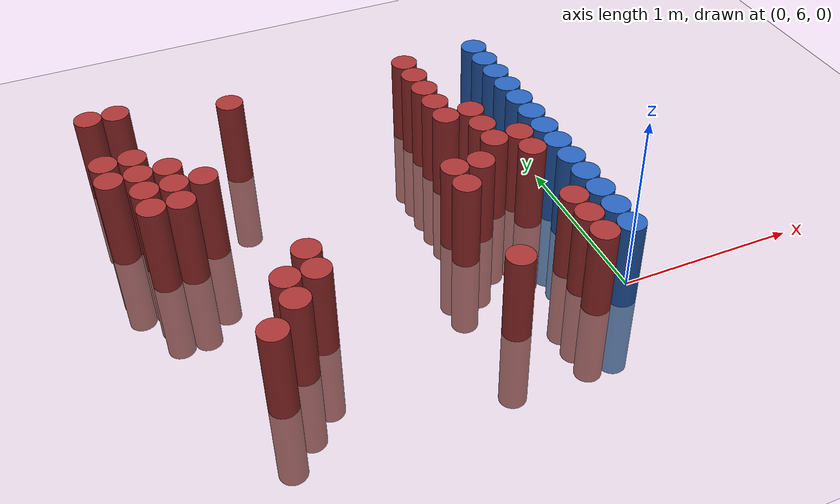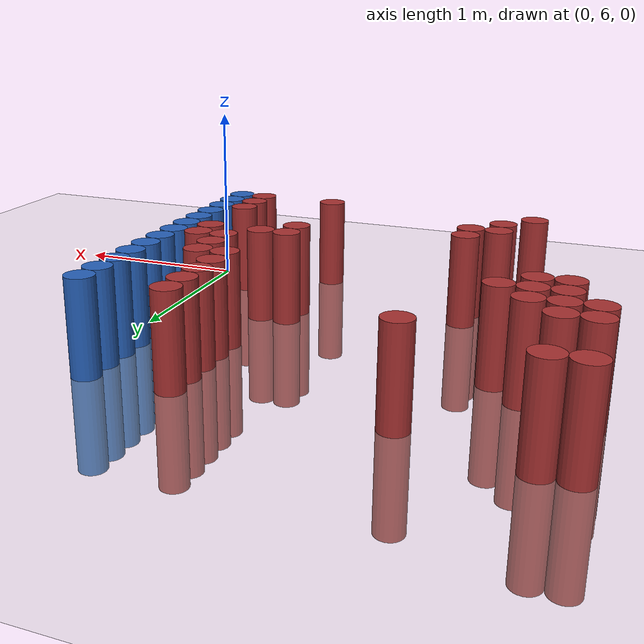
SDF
<sdf version="1.6">
 <world name="default">
  <model name="ground_plane">
   <static>1</static>
   <link name="link">
    <collision name="collision">
     <geometry><plane><normal>0 0 1</normal><size>100 100</size></plane></geometry>
     <surface><friction><ode><mu>100</mu><mu2>50</mu2></ode></friction></surface>
    </collision>
    <visual name="visual">
     <cast_shadows>0</cast_shadows>
     <geometry><plane><normal>0 0 1</normal><size>100 100</size></plane></geometry>
     <material>
      <script><uri>file://media/materials/scripts/gazebo.material</uri><name>Gazebo/Grey</name></script>
     </material>
    </visual>
   </link>
  </model>
  <model name="unit_cylinder_213">
   <static>1</static>
   <pose>-2.325000 7.275000 0.000000 0.000000 0.000000 0.000000</pose>
   <link name="link">
    <inertial>
     <mass>1</mass>
     <inertia><ixx>0.145833</ixx><ixy>0</ixy><ixz>0</ixz><iyy>0.145833</iyy><iyz>0</iyz><izz>0.125</izz></inertia>
    </inertial>
    <collision name="collision">
     <geometry><cylinder><radius>0.075000</radius><length>1</length></cylinder></geometry>
    </collision>
    <visual name="visual">
     <geometry><cylinder><radius>0.075000</radius><length>1</length></cylinder></geometry>
     <material>
      <ambient>0.648000 0.192000 0.192000 1</ambient>
      <diffuse>0.648000 0.192000 0.192000 1</diffuse>
     </material>
     <material>
      <script><name>Gazebo/Grey</name><uri>file://media/materials/scripts/gazebo.material</uri></script>
     </material>
    </visual>
   </link>
  </model>
  <model name="unit_cylinder_214">
   <static>1</static>
   <pose>-2.325000 7.425000 0.000000 0.000000 0.000000 0.000000</pose>
   <link name="link">
    <inertial>
     <mass>1</mass>
     <inertia><ixx>0.145833</ixx><ixy>0</ixy><ixz>0</ixz><iyy>0.145833</iyy><iyz>0</iyz><izz>0.125</izz></inertia>
    </inertial>
    <collision name="collision">
     <geometry><cylinder><radius>0.075000</radius><length>1</length></cylinder></geometry>
    </collision>
    <visual name="visual">
     <geometry><cylinder><radius>0.075000</radius><length>1</length></cylinder></geometry>
     <material>
      <ambient>0.648000 0.192000 0.192000 1</ambient>
      <diffuse>0.648000 0.192000 0.192000 1</diffuse>
     </material>
     <material>
      <script><name>Gazebo/Grey</name><uri>file://media/materials/scripts/gazebo.material</uri></script>
     </material>
    </visual>
   </link>
  </model>
  <model name="unit_cylinder_215">
   <static>1</static>
   <pose>-2.325000 7.875000 0.000000 0.000000 0.000000 0.000000</pose>
   <link name="link">
    <inertial>
     <mass>1</mass>
     <inertia><ixx>0.145833</ixx><ixy>0</ixy><ixz>0</ixz><iyy>0.145833</iyy><iyz>0</iyz><izz>0.125</izz></inertia>
    </inertial>
    <collision name="collision">
     <geometry><cylinder><radius>0.075000</radius><length>1</length></cylinder></geometry>
    </collision>
    <visual name="visual">
     <geometry><cylinder><radius>0.075000</radius><length>1</length></cylinder></geometry>
     <material>
      <ambient>0.648000 0.192000 0.192000 1</ambient>
      <diffuse>0.648000 0.192000 0.192000 1</diffuse>
     </material>
     <material>
      <script><name>Gazebo/Grey</name><uri>file://media/materials/scripts/gazebo.material</uri></script>
     </material>
    </visual>
   </link>
  </model>
  <model name="unit_cylinder_221">
   <static>1</static>
   <pose>-2.175000 6.975000 0.000000 0.000000 0.000000 0.000000</pose>
   <link name="link">
    <inertial>
     <mass>1</mass>
     <inertia><ixx>0.145833</ixx><ixy>0</ixy><ixz>0</ixz><iyy>0.145833</iyy><iyz>0</iyz><izz>0.125</izz></inertia>
    </inertial>
    <collision name="collision">
     <geometry><cylinder><radius>0.075000</radius><length>1</length></cylinder></geometry>
    </collision>
    <visual name="visual">
     <geometry><cylinder><radius>0.075000</radius><length>1</length></cylinder></geometry>
     <material>
      <ambient>0.648000 0.192000 0.192000 1</ambient>
      <diffuse>0.648000 0.192000 0.192000 1</diffuse>
     </material>
     <material>
      <script><name>Gazebo/Grey</name><uri>file://media/materials/scripts/gazebo.material</uri></script>
     </material>
    </visual>
   </link>
  </model>
  <model name="unit_cylinder_222">
   <static>1</static>
   <pose>-2.175000 7.125000 0.000000 0.000000 0.000000 0.000000</pose>
   <link name="link">
    <inertial>
     <mass>1</mass>
     <inertia><ixx>0.145833</ixx><ixy>0</ixy><ixz>0</ixz><iyy>0.145833</iyy><iyz>0</iyz><izz>0.125</izz></inertia>
    </inertial>
    <collision name="collision">
     <geometry><cylinder><radius>0.075000</radius><length>1</length></cylinder></geometry>
    </collision>
    <visual name="visual">
     <geometry><cylinder><radius>0.075000</radius><length>1</length></cylinder></geometry>
     <material>
      <ambient>0.648000 0.192000 0.192000 1</ambient>
      <diffuse>0.648000 0.192000 0.192000 1</diffuse>
     </material>
     <material>
      <script><name>Gazebo/Grey</name><uri>file://media/materials/scripts/gazebo.material</uri></script>
     </material>
    </visual>
   </link>
  </model>
  <model name="unit_cylinder_223">
   <static>1</static>
   <pose>-2.175000 7.275000 0.000000 0.000000 0.000000 0.000000</pose>
   <link name="link">
    <inertial>
     <mass>1</mass>
     <inertia><ixx>0.145833</ixx><ixy>0</ixy><ixz>0</ixz><iyy>0.145833</iyy><iyz>0</iyz><izz>0.125</izz></inertia>
    </inertial>
    <collision name="collision">
     <geometry><cylinder><radius>0.075000</radius><length>1</length></cylinder></geometry>
    </collision>
    <visual name="visual">
     <geometry><cylinder><radius>0.075000</radius><length>1</length></cylinder></geometry>
     <material>
      <ambient>0.648000 0.192000 0.192000 1</ambient>
      <diffuse>0.648000 0.192000 0.192000 1</diffuse>
     </material>
     <material>
      <script><name>Gazebo/Grey</name><uri>file://media/materials/scripts/gazebo.material</uri></script>
     </material>
    </visual>
   </link>
  </model>
  <model name="unit_cylinder_224">
   <static>1</static>
   <pose>-2.175000 7.425000 0.000000 0.000000 0.000000 0.000000</pose>
   <link name="link">
    <inertial>
     <mass>1</mass>
     <inertia><ixx>0.145833</ixx><ixy>0</ixy><ixz>0</ixz><iyy>0.145833</iyy><iyz>0</iyz><izz>0.125</izz></inertia>
    </inertial>
    <collision name="collision">
     <geometry><cylinder><radius>0.075000</radius><length>1</length></cylinder></geometry>
    </collision>
    <visual name="visual">
     <geometry><cylinder><radius>0.075000</radius><length>1</length></cylinder></geometry>
     <material>
      <ambient>0.648000 0.192000 0.192000 1</ambient>
      <diffuse>0.648000 0.192000 0.192000 1</diffuse>
     </material>
     <material>
      <script><name>Gazebo/Grey</name><uri>file://media/materials/scripts/gazebo.material</uri></script>
     </material>
    </visual>
   </link>
  </model>
  <model name="unit_cylinder_225">
   <static>1</static>
   <pose>-2.175000 7.875000 0.000000 0.000000 0.000000 0.000000</pose>
   <link name="link">
    <inertial>
     <mass>1</mass>
     <inertia><ixx>0.145833</ixx><ixy>0</ixy><ixz>0</ixz><iyy>0.145833</iyy><iyz>0</iyz><izz>0.125</izz></inertia>
    </inertial>
    <collision name="collision">
     <geometry><cylinder><radius>0.075000</radius><length>1</length></cylinder></geometry>
    </collision>
    <visual name="visual">
     <geometry><cylinder><radius>0.075000</radius><length>1</length></cylinder></geometry>
     <material>
      <ambient>0.648000 0.192000 0.192000 1</ambient>
      <diffuse>0.648000 0.192000 0.192000 1</diffuse>
     </material>
     <material>
      <script><name>Gazebo/Grey</name><uri>file://media/materials/scripts/gazebo.material</uri></script>
     </material>
    </visual>
   </link>
  </model>
  <model name="unit_cylinder_232">
   <static>1</static>
   <pose>-2.025000 6.975000 0.000000 0.000000 0.000000 0.000000</pose>
   <link name="link">
    <inertial>
     <mass>1</mass>
     <inertia><ixx>0.145833</ixx><ixy>0</ixy><ixz>0</ixz><iyy>0.145833</iyy><iyz>0</iyz><izz>0.125</izz></inertia>
    </inertial>
    <collision name="collision">
     <geometry><cylinder><radius>0.075000</radius><length>1</length></cylinder></geometry>
    </collision>
    <visual name="visual">
     <geometry><cylinder><radius>0.075000</radius><length>1</length></cylinder></geometry>
     <material>
      <ambient>0.648000 0.192000 0.192000 1</ambient>
      <diffuse>0.648000 0.192000 0.192000 1</diffuse>
     </material>
     <material>
      <script><name>Gazebo/Grey</name><uri>file://media/materials/scripts/gazebo.material</uri></script>
     </material>
    </visual>
   </link>
  </model>
  <model name="unit_cylinder_233">
   <static>1</static>
   <pose>-2.025000 7.125000 0.000000 0.000000 0.000000 0.000000</pose>
   <link name="link">
    <inertial>
     <mass>1</mass>
     <inertia><ixx>0.145833</ixx><ixy>0</ixy><ixz>0</ixz><iyy>0.145833</iyy><iyz>0</iyz><izz>0.125</izz></inertia>
    </inertial>
    <collision name="collision">
     <geometry><cylinder><radius>0.075000</radius><length>1</length></cylinder></geometry>
    </collision>
    <visual name="visual">
     <geometry><cylinder><radius>0.075000</radius><length>1</length></cylinder></geometry>
     <material>
      <ambient>0.648000 0.192000 0.192000 1</ambient>
      <diffuse>0.648000 0.192000 0.192000 1</diffuse>
     </material>
     <material>
      <script><name>Gazebo/Grey</name><uri>file://media/materials/scripts/gazebo.material</uri></script>
     </material>
    </visual>
   </link>
  </model>
  <model name="unit_cylinder_234">
   <static>1</static>
   <pose>-2.025000 7.275000 0.000000 0.000000 0.000000 0.000000</pose>
   <link name="link">
    <inertial>
     <mass>1</mass>
     <inertia><ixx>0.145833</ixx><ixy>0</ixy><ixz>0</ixz><iyy>0.145833</iyy><iyz>0</iyz><izz>0.125</izz></inertia>
    </inertial>
    <collision name="collision">
     <geometry><cylinder><radius>0.075000</radius><length>1</length></cylinder></geometry>
    </collision>
    <visual name="visual">
     <geometry><cylinder><radius>0.075000</radius><length>1</length></cylinder></geometry>
     <material>
      <ambient>0.648000 0.192000 0.192000 1</ambient>
      <diffuse>0.648000 0.192000 0.192000 1</diffuse>
     </material>
     <material>
      <script><name>Gazebo/Grey</name><uri>file://media/materials/scripts/gazebo.material</uri></script>
     </material>
    </visual>
   </link>
  </model>
  <model name="unit_cylinder_239">
   <static>1</static>
   <pose>-1.875000 5.925000 0.000000 0.000000 0.000000 0.000000</pose>
   <link name="link">
    <inertial>
     <mass>1</mass>
     <inertia><ixx>0.145833</ixx><ixy>0</ixy><ixz>0</ixz><iyy>0.145833</iyy><iyz>0</iyz><izz>0.125</izz></inertia>
    </inertial>
    <collision name="collision">
     <geometry><cylinder><radius>0.075000</radius><length>1</length></cylinder></geometry>
    </collision>
    <visual name="visual">
     <geometry><cylinder><radius>0.075000</radius><length>1</length></cylinder></geometry>
     <material>
      <ambient>0.648000 0.192000 0.192000 1</ambient>
      <diffuse>0.648000 0.192000 0.192000 1</diffuse>
     </material>
     <material>
      <script><name>Gazebo/Grey</name><uri>file://media/materials/scripts/gazebo.material</uri></script>
     </material>
    </visual>
   </link>
  </model>
  <model name="unit_cylinder_240">
   <static>1</static>
   <pose>-1.875000 7.125000 0.000000 0.000000 0.000000 0.000000</pose>
   <link name="link">
    <inertial>
     <mass>1</mass>
     <inertia><ixx>0.145833</ixx><ixy>0</ixy><ixz>0</ixz><iyy>0.145833</iyy><iyz>0</iyz><izz>0.125</izz></inertia>
    </inertial>
    <collision name="collision">
     <geometry><cylinder><radius>0.075000</radius><length>1</length></cylinder></geometry>
    </collision>
    <visual name="visual">
     <geometry><cylinder><radius>0.075000</radius><length>1</length></cylinder></geometry>
     <material>
      <ambient>0.648000 0.192000 0.192000 1</ambient>
      <diffuse>0.648000 0.192000 0.192000 1</diffuse>
     </material>
     <material>
      <script><name>Gazebo/Grey</name><uri>file://media/materials/scripts/gazebo.material</uri></script>
     </material>
    </visual>
   </link>
  </model>
  <model name="unit_cylinder_245">
   <static>1</static>
   <pose>-1.725000 6.075000 0.000000 0.000000 0.000000 0.000000</pose>
   <link name="link">
    <inertial>
     <mass>1</mass>
     <inertia><ixx>0.145833</ixx><ixy>0</ixy><ixz>0</ixz><iyy>0.145833</iyy><iyz>0</iyz><izz>0.125</izz></inertia>
    </inertial>
    <collision name="collision">
     <geometry><cylinder><radius>0.075000</radius><length>1</length></cylinder></geometry>
    </collision>
    <visual name="visual">
     <geometry><cylinder><radius>0.075000</radius><length>1</length></cylinder></geometry>
     <material>
      <ambient>0.648000 0.192000 0.192000 1</ambient>
      <diffuse>0.648000 0.192000 0.192000 1</diffuse>
     </material>
     <material>
      <script><name>Gazebo/Grey</name><uri>file://media/materials/scripts/gazebo.material</uri></script>
     </material>
    </visual>
   </link>
  </model>
  <model name="unit_cylinder_246">
   <static>1</static>
   <pose>-1.725000 6.225000 0.000000 0.000000 0.000000 0.000000</pose>
   <link name="link">
    <inertial>
     <mass>1</mass>
     <inertia><ixx>0.145833</ixx><ixy>0</ixy><ixz>0</ixz><iyy>0.145833</iyy><iyz>0</iyz><izz>0.125</izz></inertia>
    </inertial>
    <collision name="collision">
     <geometry><cylinder><radius>0.075000</radius><length>1</length></cylinder></geometry>
    </collision>
    <visual name="visual">
     <geometry><cylinder><radius>0.075000</radius><length>1</length></cylinder></geometry>
     <material>
      <ambient>0.648000 0.192000 0.192000 1</ambient>
      <diffuse>0.648000 0.192000 0.192000 1</diffuse>
     </material>
     <material>
      <script><name>Gazebo/Grey</name><uri>file://media/materials/scripts/gazebo.material</uri></script>
     </material>
    </visual>
   </link>
  </model>
  <model name="unit_cylinder_253">
   <static>1</static>
   <pose>-1.575000 6.225000 0.000000 0.000000 0.000000 0.000000</pose>
   <link name="link">
    <inertial>
     <mass>1</mass>
     <inertia><ixx>0.145833</ixx><ixy>0</ixy><ixz>0</ixz><iyy>0.145833</iyy><iyz>0</iyz><izz>0.125</izz></inertia>
    </inertial>
    <collision name="collision">
     <geometry><cylinder><radius>0.075000</radius><length>1</length></cylinder></geometry>
    </collision>
    <visual name="visual">
     <geometry><cylinder><radius>0.075000</radius><length>1</length></cylinder></geometry>
     <material>
      <ambient>0.648000 0.192000 0.192000 1</ambient>
      <diffuse>0.648000 0.192000 0.192000 1</diffuse>
     </material>
     <material>
      <script><name>Gazebo/Grey</name><uri>file://media/materials/scripts/gazebo.material</uri></script>
     </material>
    </visual>
   </link>
  </model>
  <model name="unit_cylinder_254">
   <static>1</static>
   <pose>-1.575000 6.375000 0.000000 0.000000 0.000000 0.000000</pose>
   <link name="link">
    <inertial>
     <mass>1</mass>
     <inertia><ixx>0.145833</ixx><ixy>0</ixy><ixz>0</ixz><iyy>0.145833</iyy><iyz>0</iyz><izz>0.125</izz></inertia>
    </inertial>
    <collision name="collision">
     <geometry><cylinder><radius>0.075000</radius><length>1</length></cylinder></geometry>
    </collision>
    <visual name="visual">
     <geometry><cylinder><radius>0.075000</radius><length>1</length></cylinder></geometry>
     <material>
      <ambient>0.648000 0.192000 0.192000 1</ambient>
      <diffuse>0.648000 0.192000 0.192000 1</diffuse>
     </material>
     <material>
      <script><name>Gazebo/Grey</name><uri>file://media/materials/scripts/gazebo.material</uri></script>
     </material>
    </visual>
   </link>
  </model>
  <model name="unit_cylinder_255">
   <static>1</static>
   <pose>-1.575000 7.725000 0.000000 0.000000 0.000000 0.000000</pose>
   <link name="link">
    <inertial>
     <mass>1</mass>
     <inertia><ixx>0.145833</ixx><ixy>0</ixy><ixz>0</ixz><iyy>0.145833</iyy><iyz>0</iyz><izz>0.125</izz></inertia>
    </inertial>
    <collision name="collision">
     <geometry><cylinder><radius>0.075000</radius><length>1</length></cylinder></geometry>
    </collision>
    <visual name="visual">
     <geometry><cylinder><radius>0.075000</radius><length>1</length></cylinder></geometry>
     <material>
      <ambient>0.648000 0.192000 0.192000 1</ambient>
      <diffuse>0.648000 0.192000 0.192000 1</diffuse>
     </material>
     <material>
      <script><name>Gazebo/Grey</name><uri>file://media/materials/scripts/gazebo.material</uri></script>
     </material>
    </visual>
   </link>
  </model>
  <model name="unit_cylinder_262">
   <static>1</static>
   <pose>-0.675000 5.925000 0.000000 0.000000 0.000000 0.000000</pose>
   <link name="link">
    <inertial>
     <mass>1</mass>
     <inertia><ixx>0.145833</ixx><ixy>0</ixy><ixz>0</ixz><iyy>0.145833</iyy><iyz>0</iyz><izz>0.125</izz></inertia>
    </inertial>
    <collision name="collision">
     <geometry><cylinder><radius>0.075000</radius><length>1</length></cylinder></geometry>
    </collision>
    <visual name="visual">
     <geometry><cylinder><radius>0.075000</radius><length>1</length></cylinder></geometry>
     <material>
      <ambient>0.648000 0.192000 0.192000 1</ambient>
      <diffuse>0.648000 0.192000 0.192000 1</diffuse>
     </material>
     <material>
      <script><name>Gazebo/Grey</name><uri>file://media/materials/scripts/gazebo.material</uri></script>
     </material>
    </visual>
   </link>
  </model>
  <model name="unit_cylinder_263">
   <static>1</static>
   <pose>-0.675000 6.525000 0.000000 0.000000 0.000000 0.000000</pose>
   <link name="link">
    <inertial>
     <mass>1</mass>
     <inertia><ixx>0.145833</ixx><ixy>0</ixy><ixz>0</ixz><iyy>0.145833</iyy><iyz>0</iyz><izz>0.125</izz></inertia>
    </inertial>
    <collision name="collision">
     <geometry><cylinder><radius>0.075000</radius><length>1</length></cylinder></geometry>
    </collision>
    <visual name="visual">
     <geometry><cylinder><radius>0.075000</radius><length>1</length></cylinder></geometry>
     <material>
      <ambient>0.648000 0.192000 0.192000 1</ambient>
      <diffuse>0.648000 0.192000 0.192000 1</diffuse>
     </material>
     <material>
      <script><name>Gazebo/Grey</name><uri>file://media/materials/scripts/gazebo.material</uri></script>
     </material>
    </visual>
   </link>
  </model>
  <model name="unit_cylinder_264">
   <static>1</static>
   <pose>-0.675000 6.675000 0.000000 0.000000 0.000000 0.000000</pose>
   <link name="link">
    <inertial>
     <mass>1</mass>
     <inertia><ixx>0.145833</ixx><ixy>0</ixy><ixz>0</ixz><iyy>0.145833</iyy><iyz>0</iyz><izz>0.125</izz></inertia>
    </inertial>
    <collision name="collision">
     <geometry><cylinder><radius>0.075000</radius><length>1</length></cylinder></geometry>
    </collision>
    <visual name="visual">
     <geometry><cylinder><radius>0.075000</radius><length>1</length></cylinder></geometry>
     <material>
      <ambient>0.648000 0.192000 0.192000 1</ambient>
      <diffuse>0.648000 0.192000 0.192000 1</diffuse>
     </material>
     <material>
      <script><name>Gazebo/Grey</name><uri>file://media/materials/scripts/gazebo.material</uri></script>
     </material>
    </visual>
   </link>
  </model>
  <model name="unit_cylinder_266">
   <static>1</static>
   <pose>-0.525000 6.675000 0.000000 0.000000 0.000000 0.000000</pose>
   <link name="link">
    <inertial>
     <mass>1</mass>
     <inertia><ixx>0.145833</ixx><ixy>0</ixy><ixz>0</ixz><iyy>0.145833</iyy><iyz>0</iyz><izz>0.125</izz></inertia>
    </inertial>
    <collision name="collision">
     <geometry><cylinder><radius>0.075000</radius><length>1</length></cylinder></geometry>
    </collision>
    <visual name="visual">
     <geometry><cylinder><radius>0.075000</radius><length>1</length></cylinder></geometry>
     <material>
      <ambient>0.648000 0.192000 0.192000 1</ambient>
      <diffuse>0.648000 0.192000 0.192000 1</diffuse>
     </material>
     <material>
      <script><name>Gazebo/Grey</name><uri>file://media/materials/scripts/gazebo.material</uri></script>
     </material>
    </visual>
   </link>
  </model>
  <model name="unit_cylinder_267">
   <static>1</static>
   <pose>-0.525000 7.125000 0.000000 0.000000 0.000000 0.000000</pose>
   <link name="link">
    <inertial>
     <mass>1</mass>
     <inertia><ixx>0.145833</ixx><ixy>0</ixy><ixz>0</ixz><iyy>0.145833</iyy><iyz>0</iyz><izz>0.125</izz></inertia>
    </inertial>
    <collision name="collision">
     <geometry><cylinder><radius>0.075000</radius><length>1</length></cylinder></geometry>
    </collision>
    <visual name="visual">
     <geometry><cylinder><radius>0.075000</radius><length>1</length></cylinder></geometry>
     <material>
      <ambient>0.648000 0.192000 0.192000 1</ambient>
      <diffuse>0.648000 0.192000 0.192000 1</diffuse>
     </material>
     <material>
      <script><name>Gazebo/Grey</name><uri>file://media/materials/scripts/gazebo.material</uri></script>
     </material>
    </visual>
   </link>
  </model>
  <model name="unit_cylinder_268">
   <static>1</static>
   <pose>-0.525000 7.275000 0.000000 0.000000 0.000000 0.000000</pose>
   <link name="link">
    <inertial>
     <mass>1</mass>
     <inertia><ixx>0.145833</ixx><ixy>0</ixy><ixz>0</ixz><iyy>0.145833</iyy><iyz>0</iyz><izz>0.125</izz></inertia>
    </inertial>
    <collision name="collision">
     <geometry><cylinder><radius>0.075000</radius><length>1</length></cylinder></geometry>
    </collision>
    <visual name="visual">
     <geometry><cylinder><radius>0.075000</radius><length>1</length></cylinder></geometry>
     <material>
      <ambient>0.648000 0.192000 0.192000 1</ambient>
      <diffuse>0.648000 0.192000 0.192000 1</diffuse>
     </material>
     <material>
      <script><name>Gazebo/Grey</name><uri>file://media/materials/scripts/gazebo.material</uri></script>
     </material>
    </visual>
   </link>
  </model>
  <model name="unit_cylinder_269">
   <static>1</static>
   <pose>-0.525000 7.425000 0.000000 0.000000 0.000000 0.000000</pose>
   <link name="link">
    <inertial>
     <mass>1</mass>
     <inertia><ixx>0.145833</ixx><ixy>0</ixy><ixz>0</ixz><iyy>0.145833</iyy><iyz>0</iyz><izz>0.125</izz></inertia>
    </inertial>
    <collision name="collision">
     <geometry><cylinder><radius>0.075000</radius><length>1</length></cylinder></geometry>
    </collision>
    <visual name="visual">
     <geometry><cylinder><radius>0.075000</radius><length>1</length></cylinder></geometry>
     <material>
      <ambient>0.648000 0.192000 0.192000 1</ambient>
      <diffuse>0.648000 0.192000 0.192000 1</diffuse>
     </material>
     <material>
      <script><name>Gazebo/Grey</name><uri>file://media/materials/scripts/gazebo.material</uri></script>
     </material>
    </visual>
   </link>
  </model>
  <model name="unit_cylinder_270">
   <static>1</static>
   <pose>-0.525000 7.575000 0.000000 0.000000 0.000000 0.000000</pose>
   <link name="link">
    <inertial>
     <mass>1</mass>
     <inertia><ixx>0.145833</ixx><ixy>0</ixy><ixz>0</ixz><iyy>0.145833</iyy><iyz>0</iyz><izz>0.125</izz></inertia>
    </inertial>
    <collision name="collision">
     <geometry><cylinder><radius>0.075000</radius><length>1</length></cylinder></geometry>
    </collision>
    <visual name="visual">
     <geometry><cylinder><radius>0.075000</radius><length>1</length></cylinder></geometry>
     <material>
      <ambient>0.648000 0.192000 0.192000 1</ambient>
      <diffuse>0.648000 0.192000 0.192000 1</diffuse>
     </material>
     <material>
      <script><name>Gazebo/Grey</name><uri>file://media/materials/scripts/gazebo.material</uri></script>
     </material>
    </visual>
   </link>
  </model>
  <model name="unit_cylinder_271">
   <static>1</static>
   <pose>-0.525000 7.725000 0.000000 0.000000 0.000000 0.000000</pose>
   <link name="link">
    <inertial>
     <mass>1</mass>
     <inertia><ixx>0.145833</ixx><ixy>0</ixy><ixz>0</ixz><iyy>0.145833</iyy><iyz>0</iyz><izz>0.125</izz></inertia>
    </inertial>
    <collision name="collision">
     <geometry><cylinder><radius>0.075000</radius><length>1</length></cylinder></geometry>
    </collision>
    <visual name="visual">
     <geometry><cylinder><radius>0.075000</radius><length>1</length></cylinder></geometry>
     <material>
      <ambient>0.648000 0.192000 0.192000 1</ambient>
      <diffuse>0.648000 0.192000 0.192000 1</diffuse>
     </material>
     <material>
      <script><name>Gazebo/Grey</name><uri>file://media/materials/scripts/gazebo.material</uri></script>
     </material>
    </visual>
   </link>
  </model>
  <model name="unit_cylinder_276">
   <static>1</static>
   <pose>-0.375000 6.825000 0.000000 0.000000 0.000000 0.000000</pose>
   <link name="link">
    <inertial>
     <mass>1</mass>
     <inertia><ixx>0.145833</ixx><ixy>0</ixy><ixz>0</ixz><iyy>0.145833</iyy><iyz>0</iyz><izz>0.125</izz></inertia>
    </inertial>
    <collision name="collision">
     <geometry><cylinder><radius>0.075000</radius><length>1</length></cylinder></geometry>
    </collision>
    <visual name="visual">
     <geometry><cylinder><radius>0.075000</radius><length>1</length></cylinder></geometry>
     <material>
      <ambient>0.648000 0.192000 0.192000 1</ambient>
      <diffuse>0.648000 0.192000 0.192000 1</diffuse>
     </material>
     <material>
      <script><name>Gazebo/Grey</name><uri>file://media/materials/scripts/gazebo.material</uri></script>
     </material>
    </visual>
   </link>
  </model>
  <model name="unit_cylinder_277">
   <static>1</static>
   <pose>-0.375000 6.975000 0.000000 0.000000 0.000000 0.000000</pose>
   <link name="link">
    <inertial>
     <mass>1</mass>
     <inertia><ixx>0.145833</ixx><ixy>0</ixy><ixz>0</ixz><iyy>0.145833</iyy><iyz>0</iyz><izz>0.125</izz></inertia>
    </inertial>
    <collision name="collision">
     <geometry><cylinder><radius>0.075000</radius><length>1</length></cylinder></geometry>
    </collision>
    <visual name="visual">
     <geometry><cylinder><radius>0.075000</radius><length>1</length></cylinder></geometry>
     <material>
      <ambient>0.648000 0.192000 0.192000 1</ambient>
      <diffuse>0.648000 0.192000 0.192000 1</diffuse>
     </material>
     <material>
      <script><name>Gazebo/Grey</name><uri>file://media/materials/scripts/gazebo.material</uri></script>
     </material>
    </visual>
   </link>
  </model>
  <model name="unit_cylinder_278">
   <static>1</static>
   <pose>-0.375000 7.125000 0.000000 0.000000 0.000000 0.000000</pose>
   <link name="link">
    <inertial>
     <mass>1</mass>
     <inertia><ixx>0.145833</ixx><ixy>0</ixy><ixz>0</ixz><iyy>0.145833</iyy><iyz>0</iyz><izz>0.125</izz></inertia>
    </inertial>
    <collision name="collision">
     <geometry><cylinder><radius>0.075000</radius><length>1</length></cylinder></geometry>
    </collision>
    <visual name="visual">
     <geometry><cylinder><radius>0.075000</radius><length>1</length></cylinder></geometry>
     <material>
      <ambient>0.648000 0.192000 0.192000 1</ambient>
      <diffuse>0.648000 0.192000 0.192000 1</diffuse>
     </material>
     <material>
      <script><name>Gazebo/Grey</name><uri>file://media/materials/scripts/gazebo.material</uri></script>
     </material>
    </visual>
   </link>
  </model>
  <model name="unit_cylinder_293">
   <static>1</static>
   <pose>-0.225000 5.925000 0.000000 0.000000 0.000000 0.000000</pose>
   <link name="link">
    <inertial>
     <mass>1</mass>
     <inertia><ixx>0.145833</ixx><ixy>0</ixy><ixz>0</ixz><iyy>0.145833</iyy><iyz>0</iyz><izz>0.125</izz></inertia>
    </inertial>
    <collision name="collision">
     <geometry><cylinder><radius>0.075000</radius><length>1</length></cylinder></geometry>
    </collision>
    <visual name="visual">
     <geometry><cylinder><radius>0.075000</radius><length>1</length></cylinder></geometry>
     <material>
      <ambient>0.648000 0.192000 0.192000 1</ambient>
      <diffuse>0.648000 0.192000 0.192000 1</diffuse>
     </material>
     <material>
      <script><name>Gazebo/Grey</name><uri>file://media/materials/scripts/gazebo.material</uri></script>
     </material>
    </visual>
   </link>
  </model>
  <model name="unit_cylinder_294">
   <static>1</static>
   <pose>-0.225000 6.075000 0.000000 0.000000 0.000000 0.000000</pose>
   <link name="link">
    <inertial>
     <mass>1</mass>
     <inertia><ixx>0.145833</ixx><ixy>0</ixy><ixz>0</ixz><iyy>0.145833</iyy><iyz>0</iyz><izz>0.125</izz></inertia>
    </inertial>
    <collision name="collision">
     <geometry><cylinder><radius>0.075000</radius><length>1</length></cylinder></geometry>
    </collision>
    <visual name="visual">
     <geometry><cylinder><radius>0.075000</radius><length>1</length></cylinder></geometry>
     <material>
      <ambient>0.648000 0.192000 0.192000 1</ambient>
      <diffuse>0.648000 0.192000 0.192000 1</diffuse>
     </material>
     <material>
      <script><name>Gazebo/Grey</name><uri>file://media/materials/scripts/gazebo.material</uri></script>
     </material>
    </visual>
   </link>
  </model>
  <model name="unit_cylinder_295">
   <static>1</static>
   <pose>-0.225000 6.225000 0.000000 0.000000 0.000000 0.000000</pose>
   <link name="link">
    <inertial>
     <mass>1</mass>
     <inertia><ixx>0.145833</ixx><ixy>0</ixy><ixz>0</ixz><iyy>0.145833</iyy><iyz>0</iyz><izz>0.125</izz></inertia>
    </inertial>
    <collision name="collision">
     <geometry><cylinder><radius>0.075000</radius><length>1</length></cylinder></geometry>
    </collision>
    <visual name="visual">
     <geometry><cylinder><radius>0.075000</radius><length>1</length></cylinder></geometry>
     <material>
      <ambient>0.648000 0.192000 0.192000 1</ambient>
      <diffuse>0.648000 0.192000 0.192000 1</diffuse>
     </material>
     <material>
      <script><name>Gazebo/Grey</name><uri>file://media/materials/scripts/gazebo.material</uri></script>
     </material>
    </visual>
   </link>
  </model>
  <model name="unit_cylinder_296">
   <static>1</static>
   <pose>-0.225000 6.675000 0.000000 0.000000 0.000000 0.000000</pose>
   <link name="link">
    <inertial>
     <mass>1</mass>
     <inertia><ixx>0.145833</ixx><ixy>0</ixy><ixz>0</ixz><iyy>0.145833</iyy><iyz>0</iyz><izz>0.125</izz></inertia>
    </inertial>
    <collision name="collision">
     <geometry><cylinder><radius>0.075000</radius><length>1</length></cylinder></geometry>
    </collision>
    <visual name="visual">
     <geometry><cylinder><radius>0.075000</radius><length>1</length></cylinder></geometry>
     <material>
      <ambient>0.648000 0.192000 0.192000 1</ambient>
      <diffuse>0.648000 0.192000 0.192000 1</diffuse>
     </material>
     <material>
      <script><name>Gazebo/Grey</name><uri>file://media/materials/scripts/gazebo.material</uri></script>
     </material>
    </visual>
   </link>
  </model>
  <model name="unit_cylinder_297">
   <static>1</static>
   <pose>-0.225000 6.825000 0.000000 0.000000 0.000000 0.000000</pose>
   <link name="link">
    <inertial>
     <mass>1</mass>
     <inertia><ixx>0.145833</ixx><ixy>0</ixy><ixz>0</ixz><iyy>0.145833</iyy><iyz>0</iyz><izz>0.125</izz></inertia>
    </inertial>
    <collision name="collision">
     <geometry><cylinder><radius>0.075000</radius><length>1</length></cylinder></geometry>
    </collision>
    <visual name="visual">
     <geometry><cylinder><radius>0.075000</radius><length>1</length></cylinder></geometry>
     <material>
      <ambient>0.648000 0.192000 0.192000 1</ambient>
      <diffuse>0.648000 0.192000 0.192000 1</diffuse>
     </material>
     <material>
      <script><name>Gazebo/Grey</name><uri>file://media/materials/scripts/gazebo.material</uri></script>
     </material>
    </visual>
   </link>
  </model>
  <model name="unit_cylinder_309">
   <static>1</static>
   <pose>-0.075000 5.925000 0.000000 0.000000 0.000000 0.000000</pose>
   <link name="link">
    <inertial>
     <mass>1</mass>
     <inertia><ixx>0.145833</ixx><ixy>0</ixy><ixz>0</ixz><iyy>0.145833</iyy><iyz>0</iyz><izz>0.125</izz></inertia>
    </inertial>
    <collision name="collision">
     <geometry><cylinder><radius>0.075000</radius><length>1</length></cylinder></geometry>
    </collision>
    <visual name="visual">
     <geometry><cylinder><radius>0.075000</radius><length>1</length></cylinder></geometry>
     <material>
      <ambient>0.152000 0.379000 0.720000 1</ambient>
      <diffuse>0.152000 0.379000 0.720000 1</diffuse>
     </material>
     <material>
      <script><name>Gazebo/Grey</name><uri>file://media/materials/scripts/gazebo.material</uri></script>
     </material>
    </visual>
   </link>
  </model>
  <model name="unit_cylinder_310">
   <static>1</static>
   <pose>-0.075000 6.075000 0.000000 0.000000 0.000000 0.000000</pose>
   <link name="link">
    <inertial>
     <mass>1</mass>
     <inertia><ixx>0.145833</ixx><ixy>0</ixy><ixz>0</ixz><iyy>0.145833</iyy><iyz>0</iyz><izz>0.125</izz></inertia>
    </inertial>
    <collision name="collision">
     <geometry><cylinder><radius>0.075000</radius><length>1</length></cylinder></geometry>
    </collision>
    <visual name="visual">
     <geometry><cylinder><radius>0.075000</radius><length>1</length></cylinder></geometry>
     <material>
      <ambient>0.152000 0.379000 0.720000 1</ambient>
      <diffuse>0.152000 0.379000 0.720000 1</diffuse>
     </material>
     <material>
      <script><name>Gazebo/Grey</name><uri>file://media/materials/scripts/gazebo.material</uri></script>
     </material>
    </visual>
   </link>
  </model>
  <model name="unit_cylinder_311">
   <static>1</static>
   <pose>-0.075000 6.225000 0.000000 0.000000 0.000000 0.000000</pose>
   <link name="link">
    <inertial>
     <mass>1</mass>
     <inertia><ixx>0.145833</ixx><ixy>0</ixy><ixz>0</ixz><iyy>0.145833</iyy><iyz>0</iyz><izz>0.125</izz></inertia>
    </inertial>
    <collision name="collision">
     <geometry><cylinder><radius>0.075000</radius><length>1</length></cylinder></geometry>
    </collision>
    <visual name="visual">
     <geometry><cylinder><radius>0.075000</radius><length>1</length></cylinder></geometry>
     <material>
      <ambient>0.152000 0.379000 0.720000 1</ambient>
      <diffuse>0.152000 0.379000 0.720000 1</diffuse>
     </material>
     <material>
      <script><name>Gazebo/Grey</name><uri>file://media/materials/scripts/gazebo.material</uri></script>
     </material>
    </visual>
   </link>
  </model>
  <model name="unit_cylinder_312">
   <static>1</static>
   <pose>-0.075000 6.375000 0.000000 0.000000 0.000000 0.000000</pose>
   <link name="link">
    <inertial>
     <mass>1</mass>
     <inertia><ixx>0.145833</ixx><ixy>0</ixy><ixz>0</ixz><iyy>0.145833</iyy><iyz>0</iyz><izz>0.125</izz></inertia>
    </inertial>
    <collision name="collision">
     <geometry><cylinder><radius>0.075000</radius><length>1</length></cylinder></geometry>
    </collision>
    <visual name="visual">
     <geometry><cylinder><radius>0.075000</radius><length>1</length></cylinder></geometry>
     <material>
      <ambient>0.152000 0.379000 0.720000 1</ambient>
      <diffuse>0.152000 0.379000 0.720000 1</diffuse>
     </material>
     <material>
      <script><name>Gazebo/Grey</name><uri>file://media/materials/scripts/gazebo.material</uri></script>
     </material>
    </visual>
   </link>
  </model>
  <model name="unit_cylinder_313">
   <static>1</static>
   <pose>-0.075000 6.525000 0.000000 0.000000 0.000000 0.000000</pose>
   <link name="link">
    <inertial>
     <mass>1</mass>
     <inertia><ixx>0.145833</ixx><ixy>0</ixy><ixz>0</ixz><iyy>0.145833</iyy><iyz>0</iyz><izz>0.125</izz></inertia>
    </inertial>
    <collision name="collision">
     <geometry><cylinder><radius>0.075000</radius><length>1</length></cylinder></geometry>
    </collision>
    <visual name="visual">
     <geometry><cylinder><radius>0.075000</radius><length>1</length></cylinder></geometry>
     <material>
      <ambient>0.152000 0.379000 0.720000 1</ambient>
      <diffuse>0.152000 0.379000 0.720000 1</diffuse>
     </material>
     <material>
      <script><name>Gazebo/Grey</name><uri>file://media/materials/scripts/gazebo.material</uri></script>
     </material>
    </visual>
   </link>
  </model>
  <model name="unit_cylinder_314">
   <static>1</static>
   <pose>-0.075000 6.675000 0.000000 0.000000 0.000000 0.000000</pose>
   <link name="link">
    <inertial>
     <mass>1</mass>
     <inertia><ixx>0.145833</ixx><ixy>0</ixy><ixz>0</ixz><iyy>0.145833</iyy><iyz>0</iyz><izz>0.125</izz></inertia>
    </inertial>
    <collision name="collision">
     <geometry><cylinder><radius>0.075000</radius><length>1</length></cylinder></geometry>
    </collision>
    <visual name="visual">
     <geometry><cylinder><radius>0.075000</radius><length>1</length></cylinder></geometry>
     <material>
      <ambient>0.152000 0.379000 0.720000 1</ambient>
      <diffuse>0.152000 0.379000 0.720000 1</diffuse>
     </material>
     <material>
      <script><name>Gazebo/Grey</name><uri>file://media/materials/scripts/gazebo.material</uri></script>
     </material>
    </visual>
   </link>
  </model>
  <model name="unit_cylinder_315">
   <static>1</static>
   <pose>-0.075000 6.825000 0.000000 0.000000 0.000000 0.000000</pose>
   <link name="link">
    <inertial>
     <mass>1</mass>
     <inertia><ixx>0.145833</ixx><ixy>0</ixy><ixz>0</ixz><iyy>0.145833</iyy><iyz>0</iyz><izz>0.125</izz></inertia>
    </inertial>
    <collision name="collision">
     <geometry><cylinder><radius>0.075000</radius><length>1</length></cylinder></geometry>
    </collision>
    <visual name="visual">
     <geometry><cylinder><radius>0.075000</radius><length>1</length></cylinder></geometry>
     <material>
      <ambient>0.152000 0.379000 0.720000 1</ambient>
      <diffuse>0.152000 0.379000 0.720000 1</diffuse>
     </material>
     <material>
      <script><name>Gazebo/Grey</name><uri>file://media/materials/scripts/gazebo.material</uri></script>
     </material>
    </visual>
   </link>
  </model>
  <model name="unit_cylinder_316">
   <static>1</static>
   <pose>-0.075000 6.975000 0.000000 0.000000 0.000000 0.000000</pose>
   <link name="link">
    <inertial>
     <mass>1</mass>
     <inertia><ixx>0.145833</ixx><ixy>0</ixy><ixz>0</ixz><iyy>0.145833</iyy><iyz>0</iyz><izz>0.125</izz></inertia>
    </inertial>
    <collision name="collision">
     <geometry><cylinder><radius>0.075000</radius><length>1</length></cylinder></geometry>
    </collision>
    <visual name="visual">
     <geometry><cylinder><radius>0.075000</radius><length>1</length></cylinder></geometry>
     <material>
      <ambient>0.152000 0.379000 0.720000 1</ambient>
      <diffuse>0.152000 0.379000 0.720000 1</diffuse>
     </material>
     <material>
      <script><name>Gazebo/Grey</name><uri>file://media/materials/scripts/gazebo.material</uri></script>
     </material>
    </visual>
   </link>
  </model>
  <model name="unit_cylinder_317">
   <static>1</static>
   <pose>-0.075000 7.125000 0.000000 0.000000 0.000000 0.000000</pose>
   <link name="link">
    <inertial>
     <mass>1</mass>
     <inertia><ixx>0.145833</ixx><ixy>0</ixy><ixz>0</ixz><iyy>0.145833</iyy><iyz>0</iyz><izz>0.125</izz></inertia>
    </inertial>
    <collision name="collision">
     <geometry><cylinder><radius>0.075000</radius><length>1</length></cylinder></geometry>
    </collision>
    <visual name="visual">
     <geometry><cylinder><radius>0.075000</radius><length>1</length></cylinder></geometry>
     <material>
      <ambient>0.152000 0.379000 0.720000 1</ambient>
      <diffuse>0.152000 0.379000 0.720000 1</diffuse>
     </material>
     <material>
      <script><name>Gazebo/Grey</name><uri>file://media/materials/scripts/gazebo.material</uri></script>
     </material>
    </visual>
   </link>
  </model>
  <model name="unit_cylinder_318">
   <static>1</static>
   <pose>-0.075000 7.275000 0.000000 0.000000 0.000000 0.000000</pose>
   <link name="link">
    <inertial>
     <mass>1</mass>
     <inertia><ixx>0.145833</ixx><ixy>0</ixy><ixz>0</ixz><iyy>0.145833</iyy><iyz>0</iyz><izz>0.125</izz></inertia>
    </inertial>
    <collision name="collision">
     <geometry><cylinder><radius>0.075000</radius><length>1</length></cylinder></geometry>
    </collision>
    <visual name="visual">
     <geometry><cylinder><radius>0.075000</radius><length>1</length></cylinder></geometry>
     <material>
      <ambient>0.152000 0.379000 0.720000 1</ambient>
      <diffuse>0.152000 0.379000 0.720000 1</diffuse>
     </material>
     <material>
      <script><name>Gazebo/Grey</name><uri>file://media/materials/scripts/gazebo.material</uri></script>
     </material>
    </visual>
   </link>
  </model>
  <model name="unit_cylinder_319">
   <static>1</static>
   <pose>-0.075000 7.425000 0.000000 0.000000 0.000000 0.000000</pose>
   <link name="link">
    <inertial>
     <mass>1</mass>
     <inertia><ixx>0.145833</ixx><ixy>0</ixy><ixz>0</ixz><iyy>0.145833</iyy><iyz>0</iyz><izz>0.125</izz></inertia>
    </inertial>
    <collision name="collision">
     <geometry><cylinder><radius>0.075000</radius><length>1</length></cylinder></geometry>
    </collision>
    <visual name="visual">
     <geometry><cylinder><radius>0.075000</radius><length>1</length></cylinder></geometry>
     <material>
      <ambient>0.152000 0.379000 0.720000 1</ambient>
      <diffuse>0.152000 0.379000 0.720000 1</diffuse>
     </material>
     <material>
      <script><name>Gazebo/Grey</name><uri>file://media/materials/scripts/gazebo.material</uri></script>
     </material>
    </visual>
   </link>
  </model>
  <model name="unit_cylinder_320">
   <static>1</static>
   <pose>-0.075000 7.575000 0.000000 0.000000 0.000000 0.000000</pose>
   <link name="link">
    <inertial>
     <mass>1</mass>
     <inertia><ixx>0.145833</ixx><ixy>0</ixy><ixz>0</ixz><iyy>0.145833</iyy><iyz>0</iyz><izz>0.125</izz></inertia>
    </inertial>
    <collision name="collision">
     <geometry><cylinder><radius>0.075000</radius><length>1</length></cylinder></geometry>
    </collision>
    <visual name="visual">
     <geometry><cylinder><radius>0.075000</radius><length>1</length></cylinder></geometry>
     <material>
      <ambient>0.152000 0.379000 0.720000 1</ambient>
      <diffuse>0.152000 0.379000 0.720000 1</diffuse>
     </material>
     <material>
      <script><name>Gazebo/Grey</name><uri>file://media/materials/scripts/gazebo.material</uri></script>
     </material>
    </visual>
   </link>
  </model>
  <model name="unit_cylinder_321">
   <static>1</static>
   <pose>-0.075000 7.725000 0.000000 0.000000 0.000000 0.000000</pose>
   <link name="link">
    <inertial>
     <mass>1</mass>
     <inertia><ixx>0.145833</ixx><ixy>0</ixy><ixz>0</ixz><iyy>0.145833</iyy><iyz>0</iyz><izz>0.125</izz></inertia>
    </inertial>
    <collision name="collision">
     <geometry><cylinder><radius>0.075000</radius><length>1</length></cylinder></geometry>
    </collision>
    <visual name="visual">
     <geometry><cylinder><radius>0.075000</radius><length>1</length></cylinder></geometry>
     <material>
      <ambient>0.152000 0.379000 0.720000 1</ambient>
      <diffuse>0.152000 0.379000 0.720000 1</diffuse>
     </material>
     <material>
      <script><name>Gazebo/Grey</name><uri>file://media/materials/scripts/gazebo.material</uri></script>
     </material>
    </visual>
   </link>
  </model>
 </world>
</sdf>
